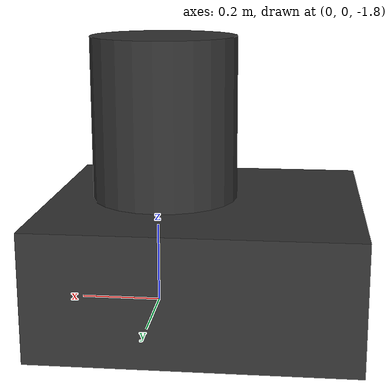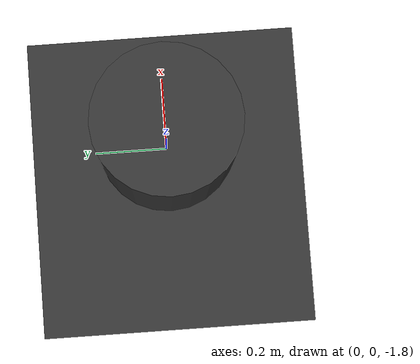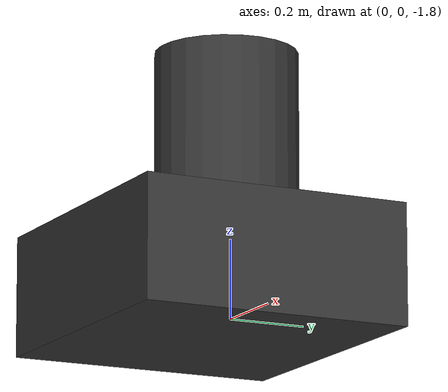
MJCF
<mujoco model="box_mount">
    <asset>
        <mesh name="pedestal" file="meshes/rethink_mount/pedestal.stl" />
    </asset>
    <worldbody>
        <body name="base" pos="0 0 -0.922">
            <body name="pedestal_feet" pos="0 0 0">
                <inertial diaginertia="8.16095 9.59375 15.0785" mass="167.09" pos="-0.1225 0 -0.758"/>
                <geom pos="-0.1225 0 -0.758" rgba="0.2 0.2 0.2 1" size="0.385 0.35 0.155" type="box" name="pedestal_feet_col"/>
            </body>
            <body name="pedestal" pos="0 0 0">
                <inertial diaginertia="6.0869 5.81635 4.20915" mass="60.864" pos="0 0 0" quat="0.659267 -0.259505 -0.260945 0.655692"/>
                <geom pos="-0.02 0 -0.4" rgba="0.2 0.2 0.2 1" size="0.18 0.2" type="cylinder" name="pedestal_col"/>
            </body>
        </body>
    </worldbody>
</mujoco>
